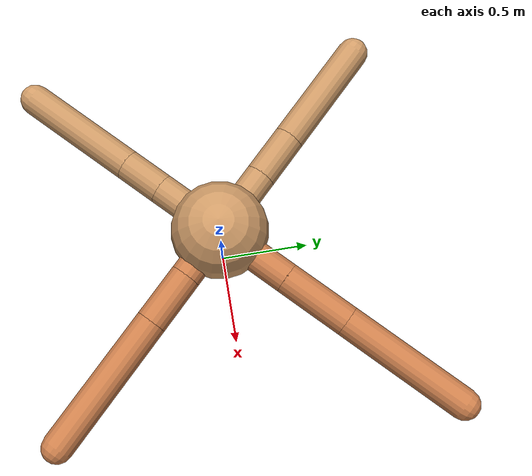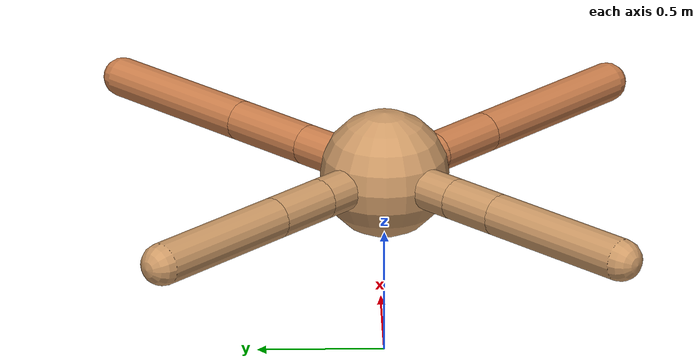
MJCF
<mujoco model="ant">
  <compiler angle="degree" coordinate="local" inertiafromgeom="true" />
  <option integrator="RK4" timestep="0.01" />
  <custom>
    <numeric data="0.0 0.0 0.55 1.0 0.0 0.0 0.0 0.0 1.0 0.0 -1.0 0.0 -1.0 0.0 1.0" name="init_qpos" />
  </custom>
  <default>
    <joint armature="1" damping="1" limited="true" />
    <geom conaffinity="0" condim="3" density="5.0" friction="1.5 0.1 0.1" margin="0.01" rgba="0.8 0.6 0.4 1" />
  </default>
  <worldbody>
    <body name="torso" pos="0 0 0.75">
      <geom name="torso_geom" pos="0 0 0" size="0.25" type="sphere" />

      <body name="front_left_leg" pos="0 0 0">
        <geom fromto="0.0 0.0 0.0 0.29362596620411124 0.29362596620411124 0.0" name="aux_1_geom" size="0.08" type="capsule" rgba=".8 .5 .3 1" />
        <body name="aux_1" pos="0.29362596620411124 0.29362596620411124 0.0">
          <joint axis="0 0 1" name="hip_1" pos="0.0 0.0 0.0" range="-40 40" type="hinge" />
          <geom fromto="0.0 0.0 0.0 0.25926199400704547 0.25926199400704547 0.0" name="left_leg_geom" size="0.08" type="capsule" rgba=".8 .5 .3 1" />
          <body pos="0.25926199400704547 0.25926199400704547 0.0" name="front_left_foot">
            <joint axis="-1 1 0" name="ankle_1" pos="0.0 0.0 0.0" range="30 100" type="hinge" />
            <geom fromto="0.0 0.0 0.0 0.4878628214301783 0.4878628214301783 0.0" name="left_ankle_geom" size="0.08" type="capsule" rgba=".8 .5 .3 1" />
          </body>
        </body>
      </body>
      <body name="front_right_leg" pos="0 0 0">
        <geom fromto="0.0 0.0 0.0 -0.250233907046644 0.250233907046644 0.0" name="aux_2_geom" size="0.08" type="capsule" />
        <body name="aux_2" pos="-0.250233907046644 0.250233907046644 0.0">
          <joint axis="0 0 1" name="hip_2" pos="0.0 0.0 0.0" range="-40 40" type="hinge" />
          <geom fromto="0.0 0.0 0.0 -0.17688634709142984 0.17688634709142984 0.0" name="right_leg_geom" size="0.08" type="capsule" />
          <body pos="-0.17688634709142984 0.17688634709142984 0.0" name="front_right_foot">
            <joint axis="1 1 0" name="ankle_2" pos="0.0 0.0 0.0" range="-100 -30" type="hinge" />
            <geom fromto="0.0 0.0 0.0 -0.411417476626737 0.411417476626737 0.0" name="right_ankle_geom" size="0.08" type="capsule" />
          </body>
        </body>
      </body>
      <body name="left_back_leg" pos="0 0 0">
        <geom fromto="0.0 0.0 0.0 -0.2618148905902726 -0.2618148905902726 0.0" name="aux_3_geom" size="0.08" type="capsule" />
        <body name="aux_3" pos="-0.2618148905902726 -0.2618148905902726 0.0">
          <joint axis="0 0 1" name="hip_3" pos="0.0 0.0 0.0" range="-40 40" type="hinge" />
          <geom fromto="0.0 0.0 0.0 -0.15435087242790113 -0.15435087242790113 0.0" name="back_leg_geom" size="0.08" type="capsule" />
          <body pos="-0.15435087242790113 -0.15435087242790113 0.0" name="left_back_foot">
            <joint axis="-1 1 0" name="ankle_3" pos="0.0 0.0 0.0" range="-100 -30" type="hinge" />
            <geom fromto="0.0 0.0 0.0 -0.42626946860399956 -0.42626946860399956 0.0" name="third_ankle_geom" size="0.08" type="capsule" />
          </body>
        </body>
      </body>
      <body name="right_back_leg" pos="0 0 0">
        <geom fromto="0.0 0.0 0.0 0.2045223116167013 -0.2045223116167013 0.0" name="aux_4_geom" size="0.08" type="capsule" rgba=".8 .5 .3 1" />
        <body name="aux_4" pos="0.2045223116167013 -0.2045223116167013 0.0">
          <joint axis="0 0 1" name="hip_4" pos="0.0 0.0 0.0" range="-40 40" type="hinge" />
          <geom fromto="0.0 0.0 0.0 0.20073767214748714 -0.20073767214748714 0.0" name="rightback_leg_geom" size="0.08" type="capsule" rgba=".8 .5 .3 1" />
          <body pos="0.20073767214748714 -0.20073767214748714 0.0" name="right_back_foot">
            <joint axis="1 1 0" name="ankle_4" pos="0.0 0.0 0.0" range="30 100" type="hinge" />
            <geom fromto="0.0 0.0 0.0 0.5277088140817865 -0.5277088140817865 0.0" name="fourth_ankle_geom" size="0.08" type="capsule" rgba=".8 .5 .3 1" />
          </body>
        </body>
      </body>
    </body>
  </worldbody>
  <actuator>
    <motor ctrllimited="true" ctrlrange="-1.0 1.0" joint="hip_4" gear="150" />
    <motor ctrllimited="true" ctrlrange="-1.0 1.0" joint="ankle_4" gear="150" />
    <motor ctrllimited="true" ctrlrange="-1.0 1.0" joint="hip_1" gear="150" />
    <motor ctrllimited="true" ctrlrange="-1.0 1.0" joint="ankle_1" gear="150" />
    <motor ctrllimited="true" ctrlrange="-1.0 1.0" joint="hip_2" gear="150" />
    <motor ctrllimited="true" ctrlrange="-1.0 1.0" joint="ankle_2" gear="150" />
    <motor ctrllimited="true" ctrlrange="-1.0 1.0" joint="hip_3" gear="150" />
    <motor ctrllimited="true" ctrlrange="-1.0 1.0" joint="ankle_3" gear="150" />
  </actuator>
</mujoco>
